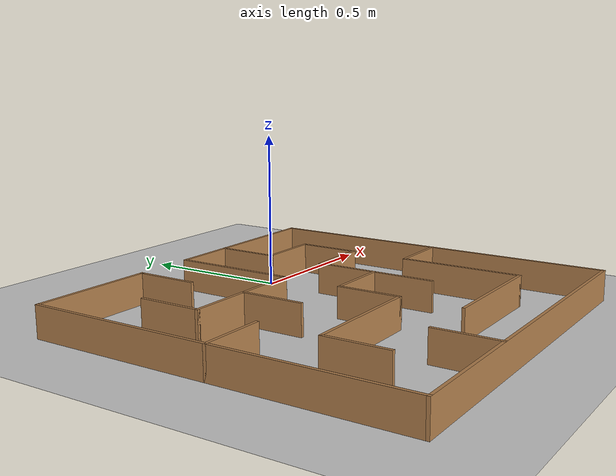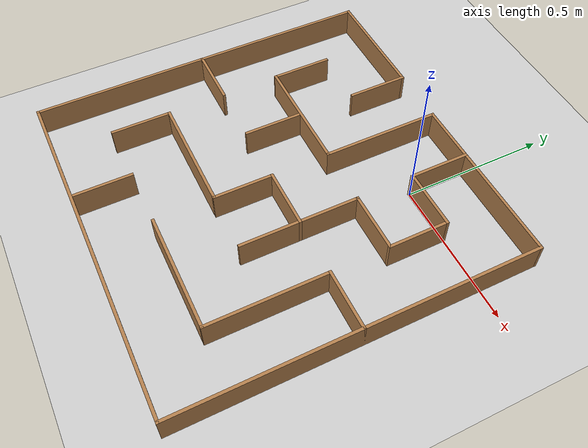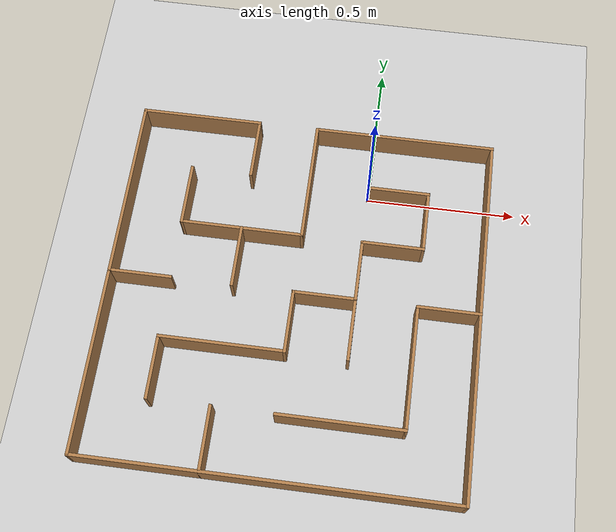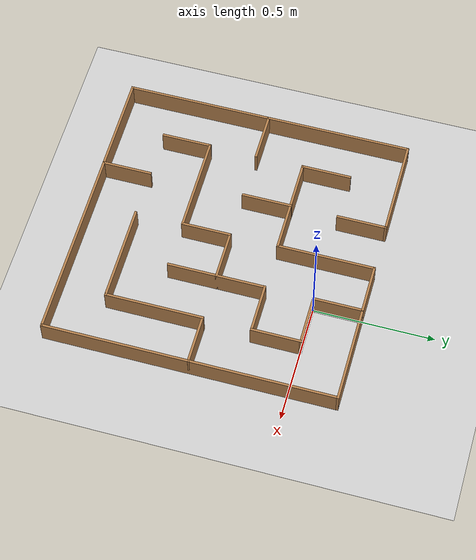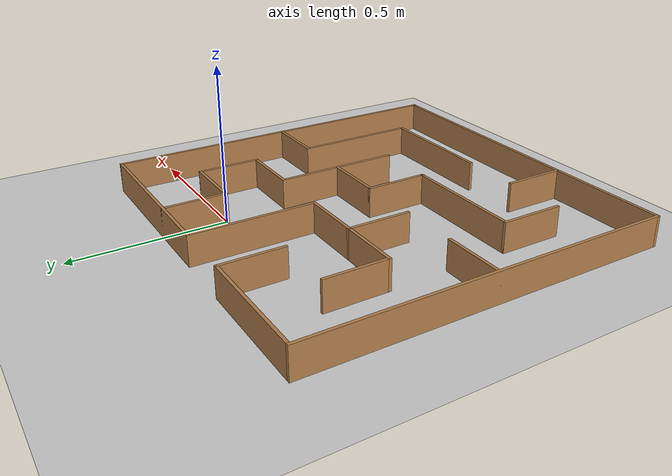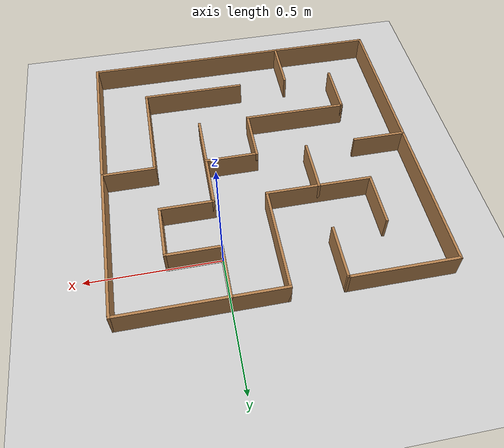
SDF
<sdf version="1.7">
 <world name="default">
  <light name="sun" type="directional">
   <pose>0 0 10 0 -0 0</pose>
   <diffuse>0.8 0.8 0.8 1</diffuse>
   <specular>0.2 0.2 0.2 1</specular>
   <attenuation>
    <range>1000</range>
    <constant>0.9</constant>
    <linear>0.01</linear>
    <quadratic>0.001</quadratic>
   </attenuation>
   <direction>-0.5 0.1 -0.9</direction>
   <spot><inner_angle>0</inner_angle><outer_angle>0</outer_angle><falloff>0</falloff></spot>
  </light>
  <model name="ground_plane">
   <static>1</static>
   <link name="link">
    <collision name="collision">
     <geometry><plane><normal>0 0 1</normal><size>100 100</size></plane></geometry>
     <surface>
      <contact><collide_bitmask>65535</collide_bitmask></contact>
      <friction><ode><mu>100</mu><mu2>50</mu2></ode></friction>
     </surface>
    </collision>
    <visual name="visual">
     <cast_shadows>0</cast_shadows>
     <geometry><plane><normal>0 0 1</normal><size>100 100</size></plane></geometry>
     <material>
      <script><uri>file://media/materials/scripts/gazebo.material</uri><name>Gazebo/Grey</name></script>
     </material>
    </visual>
   </link>
  </model>
  <gravity>0 0 -9.8</gravity>
  <magnetic_field>6e-06 2.3e-05 -4.2e-05</magnetic_field>
  <atmosphere type="adiabatic"/>
  <physics type="ode">
   <max_step_size>0.001</max_step_size>
   <real_time_factor>1</real_time_factor>
   <real_time_update_rate>1000</real_time_update_rate>
  </physics>
  <scene><ambient>0.4 0.4 0.4 1</ambient><background>0.7 0.7 0.7 1</background><shadows>1</shadows></scene>
  <audio><device>default</device></audio>
  <spherical_coordinates>
   <surface_model>EARTH_WGS84</surface_model>
   <latitude_deg>0</latitude_deg>
   <longitude_deg>0</longitude_deg>
   <elevation>0</elevation>
   <heading_deg>0</heading_deg>
  </spherical_coordinates>
  <model name="maze_6x6">
   <link name="Wall_13">
    <pose>-0.6 0 0 0 -0 1.5708</pose>
    <visual name="Wall_13_Visual">
     <pose>0 0 0.05 0 -0 0</pose>
     <geometry><box><size>1.21 0.01 0.1</size></box></geometry>
     <material>
      <script><uri>file://media/materials/scripts/gazebo.material</uri><name>Gazebo/Wood</name></script>
      <ambient>1 1 1 1</ambient>
      <shader type="pixel"/>
     </material>
     <meta><layer>0</layer></meta>
    </visual>
    <collision name="Wall_13_Collision">
     <pose>0 0 0.05 0 -0 0</pose>
     <geometry><box><size>1.21 0.01 0.1</size></box></geometry>
     <surface>
      <friction>
       <ode><mu>1</mu><mu2>1</mu2><fdir1>0 0 0</fdir1><slip1>0</slip1><slip2>0</slip2></ode>
       <torsional>
        <coefficient>1</coefficient>
        <patch_radius>0</patch_radius>
        <surface_radius>0</surface_radius>
        <use_patch_radius>1</use_patch_radius>
        <ode><slip>0</slip></ode>
       </torsional>
      </friction>
      <bounce><restitution_coefficient>0</restitution_coefficient><threshold>1e+06</threshold></bounce>
      <contact>
       <collide_without_contact>0</collide_without_contact>
       <collide_without_contact_bitmask>1</collide_without_contact_bitmask>
       <collide_bitmask>1</collide_bitmask>
       <ode>
        <soft_cfm>0</soft_cfm>
        <soft_erp>0.2</soft_erp>
        <kp>1e+13</kp>
        <kd>1</kd>
        <max_vel>0.01</max_vel>
        <min_depth>0</min_depth>
       </ode>
       <bullet>
        <split_impulse>1</split_impulse>
        <split_impulse_penetration_threshold>-0.01</split_impulse_penetration_threshold>
        <soft_cfm>0</soft_cfm>
        <soft_erp>0.2</soft_erp>
        <kp>1e+13</kp>
        <kd>1</kd>
       </bullet>
      </contact>
     </surface>
    </collision>
   </link>
   <link name="Wall_15">
    <pose>-0.3 -0.6 0 0 -0 0</pose>
    <visual name="Wall_15_Visual">
     <pose>0 0 0.05 0 -0 0</pose>
     <geometry><box><size>0.61 0.01 0.1</size></box></geometry>
     <material>
      <script><uri>file://media/materials/scripts/gazebo.material</uri><name>Gazebo/Wood</name></script>
      <ambient>1 1 1 1</ambient>
      <shader type="pixel"/>
     </material>
     <meta><layer>0</layer></meta>
    </visual>
    <collision name="Wall_15_Collision">
     <pose>0 0 0.05 0 -0 0</pose>
     <geometry><box><size>0.61 0.01 0.1</size></box></geometry>
     <surface>
      <friction>
       <ode><mu>1</mu><mu2>1</mu2><fdir1>0 0 0</fdir1><slip1>0</slip1><slip2>0</slip2></ode>
       <torsional>
        <coefficient>1</coefficient>
        <patch_radius>0</patch_radius>
        <surface_radius>0</surface_radius>
        <use_patch_radius>1</use_patch_radius>
        <ode><slip>0</slip></ode>
       </torsional>
      </friction>
      <bounce><restitution_coefficient>0</restitution_coefficient><threshold>1e+06</threshold></bounce>
      <contact>
       <collide_without_contact>0</collide_without_contact>
       <collide_without_contact_bitmask>1</collide_without_contact_bitmask>
       <collide_bitmask>1</collide_bitmask>
       <ode>
        <soft_cfm>0</soft_cfm>
        <soft_erp>0.2</soft_erp>
        <kp>1e+13</kp>
        <kd>1</kd>
        <max_vel>0.01</max_vel>
        <min_depth>0</min_depth>
       </ode>
       <bullet>
        <split_impulse>1</split_impulse>
        <split_impulse_penetration_threshold>-0.01</split_impulse_penetration_threshold>
        <soft_cfm>0</soft_cfm>
        <soft_erp>0.2</soft_erp>
        <kp>1e+13</kp>
        <kd>1</kd>
       </bullet>
      </contact>
     </surface>
    </collision>
   </link>
   <link name="Wall_17">
    <pose>0.4 -0.6 0 0 -0 0</pose>
    <visual name="Wall_17_Visual">
     <pose>0 0 0.05 0 -0 0</pose>
     <geometry><box><size>0.41 0.01 0.1</size></box></geometry>
     <material>
      <script><uri>file://media/materials/scripts/gazebo.material</uri><name>Gazebo/Wood</name></script>
      <ambient>1 1 1 1</ambient>
      <shader type="pixel"/>
     </material>
     <meta><layer>0</layer></meta>
    </visual>
    <collision name="Wall_17_Collision">
     <pose>0 0 0.05 0 -0 0</pose>
     <geometry><box><size>0.41 0.01 0.1</size></box></geometry>
     <surface>
      <friction>
       <ode><mu>1</mu><mu2>1</mu2><fdir1>0 0 0</fdir1><slip1>0</slip1><slip2>0</slip2></ode>
       <torsional>
        <coefficient>1</coefficient>
        <patch_radius>0</patch_radius>
        <surface_radius>0</surface_radius>
        <use_patch_radius>1</use_patch_radius>
        <ode><slip>0</slip></ode>
       </torsional>
      </friction>
      <bounce><restitution_coefficient>0</restitution_coefficient><threshold>1e+06</threshold></bounce>
      <contact>
       <collide_without_contact>0</collide_without_contact>
       <collide_without_contact_bitmask>1</collide_without_contact_bitmask>
       <collide_bitmask>1</collide_bitmask>
       <ode>
        <soft_cfm>0</soft_cfm>
        <soft_erp>0.2</soft_erp>
        <kp>1e+13</kp>
        <kd>1</kd>
        <max_vel>0.01</max_vel>
        <min_depth>0</min_depth>
       </ode>
       <bullet>
        <split_impulse>1</split_impulse>
        <split_impulse_penetration_threshold>-0.01</split_impulse_penetration_threshold>
        <soft_cfm>0</soft_cfm>
        <soft_erp>0.2</soft_erp>
        <kp>1e+13</kp>
        <kd>1</kd>
       </bullet>
      </contact>
     </surface>
    </collision>
   </link>
   <link name="Wall_19">
    <pose>0.6 0 0 0 -0 1.5708</pose>
    <visual name="Wall_19_Visual">
     <pose>0 0 0.05 0 -0 0</pose>
     <geometry><box><size>1.21 0.01 0.1</size></box></geometry>
     <material>
      <script><uri>file://media/materials/scripts/gazebo.material</uri><name>Gazebo/Wood</name></script>
      <ambient>1 1 1 1</ambient>
      <shader type="pixel"/>
     </material>
     <meta><layer>0</layer></meta>
    </visual>
    <collision name="Wall_19_Collision">
     <pose>0 0 0.05 0 -0 0</pose>
     <geometry><box><size>1.21 0.01 0.1</size></box></geometry>
     <surface>
      <friction>
       <ode><mu>1</mu><mu2>1</mu2><fdir1>0 0 0</fdir1><slip1>0</slip1><slip2>0</slip2></ode>
       <torsional>
        <coefficient>1</coefficient>
        <patch_radius>0</patch_radius>
        <surface_radius>0</surface_radius>
        <use_patch_radius>1</use_patch_radius>
        <ode><slip>0</slip></ode>
       </torsional>
      </friction>
      <bounce><restitution_coefficient>0</restitution_coefficient><threshold>1e+06</threshold></bounce>
      <contact>
       <collide_without_contact>0</collide_without_contact>
       <collide_without_contact_bitmask>1</collide_without_contact_bitmask>
       <collide_bitmask>1</collide_bitmask>
       <ode>
        <soft_cfm>0</soft_cfm>
        <soft_erp>0.2</soft_erp>
        <kp>1e+13</kp>
        <kd>1</kd>
        <max_vel>0.01</max_vel>
        <min_depth>0</min_depth>
       </ode>
       <bullet>
        <split_impulse>1</split_impulse>
        <split_impulse_penetration_threshold>-0.01</split_impulse_penetration_threshold>
        <soft_cfm>0</soft_cfm>
        <soft_erp>0.2</soft_erp>
        <kp>1e+13</kp>
        <kd>1</kd>
       </bullet>
      </contact>
     </surface>
    </collision>
   </link>
   <link name="Wall_21">
    <pose>-0.4 0.6 0 0 -0 0</pose>
    <inertial>
     <mass>1</mass>
     <inertia><ixx>1</ixx><ixy>0</ixy><ixz>0</ixz><iyy>1</iyy><iyz>0</iyz><izz>1</izz></inertia>
    </inertial>
    <visual name="Wall_21_Visual">
     <pose>0.4 0 0.05 0 -0 0</pose>
     <geometry><box><size>1.21 0.01 0.1</size></box></geometry>
     <material>
      <script><uri>file://media/materials/scripts/gazebo.material</uri><name>Gazebo/Wood</name></script>
      <ambient>1 1 1 1</ambient>
      <shader type="pixel"><normal_map>__default__</normal_map></shader>
      <diffuse>1 1 1 1</diffuse>
      <specular>0.2 0.2 0.2 1</specular>
      <emissive>0 0 0 1</emissive>
     </material>
     <meta><layer>0</layer></meta>
    </visual>
    <collision name="Wall_21_Collision">
     <pose>0.4 0 0.05 0 -0 0</pose>
     <geometry><box><size>1.21 0.01 0.1</size></box></geometry>
     <surface>
      <friction>
       <ode><mu>1</mu><mu2>1</mu2><fdir1>0 0 0</fdir1><slip1>0</slip1><slip2>0</slip2></ode>
       <torsional>
        <coefficient>1</coefficient>
        <patch_radius>0</patch_radius>
        <surface_radius>0</surface_radius>
        <use_patch_radius>1</use_patch_radius>
        <ode><slip>0</slip></ode>
       </torsional>
      </friction>
      <bounce><restitution_coefficient>0</restitution_coefficient><threshold>1e+06</threshold></bounce>
      <contact>
       <collide_without_contact>0</collide_without_contact>
       <collide_without_contact_bitmask>1</collide_without_contact_bitmask>
       <collide_bitmask>1</collide_bitmask>
       <ode>
        <soft_cfm>0</soft_cfm>
        <soft_erp>0.2</soft_erp>
        <kp>1e+13</kp>
        <kd>1</kd>
        <max_vel>0.01</max_vel>
        <min_depth>0</min_depth>
       </ode>
       <bullet>
        <split_impulse>1</split_impulse>
        <split_impulse_penetration_threshold>-0.01</split_impulse_penetration_threshold>
        <soft_cfm>0</soft_cfm>
        <soft_erp>0.2</soft_erp>
        <kp>1e+13</kp>
        <kd>1</kd>
       </bullet>
      </contact>
     </surface>
    </collision>
   </link>
   <link name="Wall_25">
    <pose>-0.5 0 0 0 -0 0</pose>
    <visual name="Wall_25_Visual">
     <pose>0 0 0.05 0 -0 0</pose>
     <geometry><box><size>0.21 0.01 0.1</size></box></geometry>
     <material>
      <script><uri>file://media/materials/scripts/gazebo.material</uri><name>Gazebo/Wood</name></script>
      <ambient>1 1 1 1</ambient>
      <shader type="pixel"/>
     </material>
     <meta><layer>0</layer></meta>
    </visual>
    <collision name="Wall_25_Collision">
     <pose>0 0 0.05 0 -0 0</pose>
     <geometry><box><size>0.21 0.01 0.1</size></box></geometry>
     <surface>
      <friction>
       <ode><mu>1</mu><mu2>1</mu2><fdir1>0 0 0</fdir1><slip1>0</slip1><slip2>0</slip2></ode>
       <torsional>
        <coefficient>1</coefficient>
        <patch_radius>0</patch_radius>
        <surface_radius>0</surface_radius>
        <use_patch_radius>1</use_patch_radius>
        <ode><slip>0</slip></ode>
       </torsional>
      </friction>
      <bounce><restitution_coefficient>0</restitution_coefficient><threshold>1e+06</threshold></bounce>
      <contact>
       <collide_without_contact>0</collide_without_contact>
       <collide_without_contact_bitmask>1</collide_without_contact_bitmask>
       <collide_bitmask>1</collide_bitmask>
       <ode>
        <soft_cfm>0</soft_cfm>
        <soft_erp>0.2</soft_erp>
        <kp>1e+13</kp>
        <kd>1</kd>
        <max_vel>0.01</max_vel>
        <min_depth>0</min_depth>
       </ode>
       <bullet>
        <split_impulse>1</split_impulse>
        <split_impulse_penetration_threshold>-0.01</split_impulse_penetration_threshold>
        <soft_cfm>0</soft_cfm>
        <soft_erp>0.2</soft_erp>
        <kp>1e+13</kp>
        <kd>1</kd>
       </bullet>
      </contact>
     </surface>
    </collision>
   </link>
   <link name="Wall_27">
    <pose>-0.4 0.2 0 0 -0 1.5708</pose>
    <visual name="Wall_27_Visual">
     <pose>0 0 0.05 0 -0 0</pose>
     <geometry><box><size>0.41 0.01 0.1</size></box></geometry>
     <material>
      <script><uri>file://media/materials/scripts/gazebo.material</uri><name>Gazebo/Wood</name></script>
      <ambient>1 1 1 1</ambient>
      <shader type="pixel"/>
     </material>
     <meta><layer>0</layer></meta>
    </visual>
    <collision name="Wall_27_Collision">
     <pose>0 0 0.05 0 -0 0</pose>
     <geometry><box><size>0.41 0.01 0.1</size></box></geometry>
     <surface>
      <friction>
       <ode><mu>1</mu><mu2>1</mu2><fdir1>0 0 0</fdir1><slip1>0</slip1><slip2>0</slip2></ode>
       <torsional>
        <coefficient>1</coefficient>
        <patch_radius>0</patch_radius>
        <surface_radius>0</surface_radius>
        <use_patch_radius>1</use_patch_radius>
        <ode><slip>0</slip></ode>
       </torsional>
      </friction>
      <bounce><restitution_coefficient>0</restitution_coefficient><threshold>1e+06</threshold></bounce>
      <contact>
       <collide_without_contact>0</collide_without_contact>
       <collide_without_contact_bitmask>1</collide_without_contact_bitmask>
       <collide_bitmask>1</collide_bitmask>
       <ode>
        <soft_cfm>0</soft_cfm>
        <soft_erp>0.2</soft_erp>
        <kp>1e+13</kp>
        <kd>1</kd>
        <max_vel>0.01</max_vel>
        <min_depth>0</min_depth>
       </ode>
       <bullet>
        <split_impulse>1</split_impulse>
        <split_impulse_penetration_threshold>-0.01</split_impulse_penetration_threshold>
        <soft_cfm>0</soft_cfm>
        <soft_erp>0.2</soft_erp>
        <kp>1e+13</kp>
        <kd>1</kd>
       </bullet>
      </contact>
     </surface>
    </collision>
   </link>
   <link name="Wall_29">
    <pose>-0.2 0.4 0 0 -0 0</pose>
    <visual name="Wall_29_Visual">
     <pose>0 0 0.05 0 -0 0</pose>
     <geometry><box><size>0.41 0.01 0.1</size></box></geometry>
     <material>
      <script><uri>file://media/materials/scripts/gazebo.material</uri><name>Gazebo/Wood</name></script>
      <ambient>1 1 1 1</ambient>
      <shader type="pixel"/>
     </material>
     <meta><layer>0</layer></meta>
    </visual>
    <collision name="Wall_29_Collision">
     <pose>0 0 0.05 0 -0 0</pose>
     <geometry><box><size>0.41 0.01 0.1</size></box></geometry>
     <surface>
      <friction>
       <ode><mu>1</mu><mu2>1</mu2><fdir1>0 0 0</fdir1><slip1>0</slip1><slip2>0</slip2></ode>
       <torsional>
        <coefficient>1</coefficient>
        <patch_radius>0</patch_radius>
        <surface_radius>0</surface_radius>
        <use_patch_radius>1</use_patch_radius>
        <ode><slip>0</slip></ode>
       </torsional>
      </friction>
      <bounce><restitution_coefficient>0</restitution_coefficient><threshold>1e+06</threshold></bounce>
      <contact>
       <collide_without_contact>0</collide_without_contact>
       <collide_without_contact_bitmask>1</collide_without_contact_bitmask>
       <collide_bitmask>1</collide_bitmask>
       <ode>
        <soft_cfm>0</soft_cfm>
        <soft_erp>0.2</soft_erp>
        <kp>1e+13</kp>
        <kd>1</kd>
        <max_vel>0.01</max_vel>
        <min_depth>0</min_depth>
       </ode>
       <bullet>
        <split_impulse>1</split_impulse>
        <split_impulse_penetration_threshold>-0.01</split_impulse_penetration_threshold>
        <soft_cfm>0</soft_cfm>
        <soft_erp>0.2</soft_erp>
        <kp>1e+13</kp>
        <kd>1</kd>
       </bullet>
      </contact>
     </surface>
    </collision>
   </link>
   <link name="Wall_31">
    <pose>0.2 0.5 0 0 -0 1.5708</pose>
    <visual name="Wall_31_Visual">
     <pose>0 0 0.05 0 -0 0</pose>
     <geometry><box><size>0.21 0.01 0.1</size></box></geometry>
     <material>
      <script><uri>file://media/materials/scripts/gazebo.material</uri><name>Gazebo/Wood</name></script>
      <ambient>1 1 1 1</ambient>
      <shader type="pixel"/>
     </material>
     <meta><layer>0</layer></meta>
    </visual>
    <collision name="Wall_31_Collision">
     <pose>0 0 0.05 0 -0 0</pose>
     <geometry><box><size>0.21 0.01 0.1</size></box></geometry>
     <surface>
      <friction>
       <ode><mu>1</mu><mu2>1</mu2><fdir1>0 0 0</fdir1><slip1>0</slip1><slip2>0</slip2></ode>
       <torsional>
        <coefficient>1</coefficient>
        <patch_radius>0</patch_radius>
        <surface_radius>0</surface_radius>
        <use_patch_radius>1</use_patch_radius>
        <ode><slip>0</slip></ode>
       </torsional>
      </friction>
      <bounce><restitution_coefficient>0</restitution_coefficient><threshold>1e+06</threshold></bounce>
      <contact>
       <collide_without_contact>0</collide_without_contact>
       <collide_without_contact_bitmask>1</collide_without_contact_bitmask>
       <collide_bitmask>1</collide_bitmask>
       <ode>
        <soft_cfm>0</soft_cfm>
        <soft_erp>0.2</soft_erp>
        <kp>1e+13</kp>
        <kd>1</kd>
        <max_vel>0.01</max_vel>
        <min_depth>0</min_depth>
       </ode>
       <bullet>
        <split_impulse>1</split_impulse>
        <split_impulse_penetration_threshold>-0.01</split_impulse_penetration_threshold>
        <soft_cfm>0</soft_cfm>
        <soft_erp>0.2</soft_erp>
        <kp>1e+13</kp>
        <kd>1</kd>
       </bullet>
      </contact>
     </surface>
    </collision>
   </link>
   <link name="Wall_33">
    <pose>-0.2 -0.5 0 0 -0 1.5708</pose>
    <visual name="Wall_33_Visual">
     <pose>0 0 0.05 0 -0 0</pose>
     <geometry><box><size>0.21 0.01 0.1</size></box></geometry>
     <material>
      <script><uri>file://media/materials/scripts/gazebo.material</uri><name>Gazebo/Wood</name></script>
      <ambient>1 1 1 1</ambient>
      <shader type="pixel"/>
     </material>
     <meta><layer>0</layer></meta>
    </visual>
    <collision name="Wall_33_Collision">
     <pose>0 0 0.05 0 -0 0</pose>
     <geometry><box><size>0.21 0.01 0.1</size></box></geometry>
     <surface>
      <friction>
       <ode><mu>1</mu><mu2>1</mu2><fdir1>0 0 0</fdir1><slip1>0</slip1><slip2>0</slip2></ode>
       <torsional>
        <coefficient>1</coefficient>
        <patch_radius>0</patch_radius>
        <surface_radius>0</surface_radius>
        <use_patch_radius>1</use_patch_radius>
        <ode><slip>0</slip></ode>
       </torsional>
      </friction>
      <bounce><restitution_coefficient>0</restitution_coefficient><threshold>1e+06</threshold></bounce>
      <contact>
       <collide_without_contact>0</collide_without_contact>
       <collide_without_contact_bitmask>1</collide_without_contact_bitmask>
       <collide_bitmask>1</collide_bitmask>
       <ode>
        <soft_cfm>0</soft_cfm>
        <soft_erp>0.2</soft_erp>
        <kp>1e+13</kp>
        <kd>1</kd>
        <max_vel>0.01</max_vel>
        <min_depth>0</min_depth>
       </ode>
       <bullet>
        <split_impulse>1</split_impulse>
        <split_impulse_penetration_threshold>-0.01</split_impulse_penetration_threshold>
        <soft_cfm>0</soft_cfm>
        <soft_erp>0.2</soft_erp>
        <kp>1e+13</kp>
        <kd>1</kd>
       </bullet>
      </contact>
     </surface>
    </collision>
   </link>
   <link name="Wall_35">
    <pose>-0.3 -0.4 0 0 -0 0</pose>
    <visual name="Wall_35_Visual">
     <pose>0 0 0.05 0 -0 0</pose>
     <geometry><box><size>0.21 0.01 0.1</size></box></geometry>
     <material>
      <script><uri>file://media/materials/scripts/gazebo.material</uri><name>Gazebo/Wood</name></script>
      <ambient>1 1 1 1</ambient>
      <shader type="pixel"/>
     </material>
     <meta><layer>0</layer></meta>
    </visual>
    <collision name="Wall_35_Collision">
     <pose>0 0 0.05 0 -0 0</pose>
     <geometry><box><size>0.21 0.01 0.1</size></box></geometry>
     <surface>
      <friction>
       <ode><mu>1</mu><mu2>1</mu2><fdir1>0 0 0</fdir1><slip1>0</slip1><slip2>0</slip2></ode>
       <torsional>
        <coefficient>1</coefficient>
        <patch_radius>0</patch_radius>
        <surface_radius>0</surface_radius>
        <use_patch_radius>1</use_patch_radius>
        <ode><slip>0</slip></ode>
       </torsional>
      </friction>
      <bounce><restitution_coefficient>0</restitution_coefficient><threshold>1e+06</threshold></bounce>
      <contact>
       <collide_without_contact>0</collide_without_contact>
       <collide_without_contact_bitmask>1</collide_without_contact_bitmask>
       <collide_bitmask>1</collide_bitmask>
       <ode>
        <soft_cfm>0</soft_cfm>
        <soft_erp>0.2</soft_erp>
        <kp>1e+13</kp>
        <kd>1</kd>
        <max_vel>0.01</max_vel>
        <min_depth>0</min_depth>
       </ode>
       <bullet>
        <split_impulse>1</split_impulse>
        <split_impulse_penetration_threshold>-0.01</split_impulse_penetration_threshold>
        <soft_cfm>0</soft_cfm>
        <soft_erp>0.2</soft_erp>
        <kp>1e+13</kp>
        <kd>1</kd>
       </bullet>
      </contact>
     </surface>
    </collision>
   </link>
   <link name="Wall_37">
    <pose>-0.4 -0.3 0 0 -0 1.5708</pose>
    <visual name="Wall_37_Visual">
     <pose>0 0 0.05 0 -0 0</pose>
     <geometry><box><size>0.21 0.01 0.1</size></box></geometry>
     <material>
      <script><uri>file://media/materials/scripts/gazebo.material</uri><name>Gazebo/Wood</name></script>
      <ambient>1 1 1 1</ambient>
      <shader type="pixel"/>
     </material>
     <meta><layer>0</layer></meta>
    </visual>
    <collision name="Wall_37_Collision">
     <pose>0 0 0.05 0 -0 0</pose>
     <geometry><box><size>0.21 0.01 0.1</size></box></geometry>
     <surface>
      <friction>
       <ode><mu>1</mu><mu2>1</mu2><fdir1>0 0 0</fdir1><slip1>0</slip1><slip2>0</slip2></ode>
       <torsional>
        <coefficient>1</coefficient>
        <patch_radius>0</patch_radius>
        <surface_radius>0</surface_radius>
        <use_patch_radius>1</use_patch_radius>
        <ode><slip>0</slip></ode>
       </torsional>
      </friction>
      <bounce><restitution_coefficient>0</restitution_coefficient><threshold>1e+06</threshold></bounce>
      <contact>
       <collide_without_contact>0</collide_without_contact>
       <collide_without_contact_bitmask>1</collide_without_contact_bitmask>
       <collide_bitmask>1</collide_bitmask>
       <ode>
        <soft_cfm>0</soft_cfm>
        <soft_erp>0.2</soft_erp>
        <kp>1e+13</kp>
        <kd>1</kd>
        <max_vel>0.01</max_vel>
        <min_depth>0</min_depth>
       </ode>
       <bullet>
        <split_impulse>1</split_impulse>
        <split_impulse_penetration_threshold>-0.01</split_impulse_penetration_threshold>
        <soft_cfm>0</soft_cfm>
        <soft_erp>0.2</soft_erp>
        <kp>1e+13</kp>
        <kd>1</kd>
       </bullet>
      </contact>
     </surface>
    </collision>
   </link>
   <link name="Wall_39">
    <pose>-0.3 -0.2 0 0 -0 0</pose>
    <visual name="Wall_39_Visual">
     <pose>0 0 0.05 0 -0 0</pose>
     <geometry><box><size>0.21 0.01 0.1</size></box></geometry>
     <material>
      <script><uri>file://media/materials/scripts/gazebo.material</uri><name>Gazebo/Wood</name></script>
      <ambient>1 1 1 1</ambient>
      <shader type="pixel"/>
     </material>
     <meta><layer>0</layer></meta>
    </visual>
    <collision name="Wall_39_Collision">
     <pose>0 0 0.05 0 -0 0</pose>
     <geometry><box><size>0.21 0.01 0.1</size></box></geometry>
     <surface>
      <friction>
       <ode><mu>1</mu><mu2>1</mu2><fdir1>0 0 0</fdir1><slip1>0</slip1><slip2>0</slip2></ode>
       <torsional>
        <coefficient>1</coefficient>
        <patch_radius>0</patch_radius>
        <surface_radius>0</surface_radius>
        <use_patch_radius>1</use_patch_radius>
        <ode><slip>0</slip></ode>
       </torsional>
      </friction>
      <bounce><restitution_coefficient>0</restitution_coefficient><threshold>1e+06</threshold></bounce>
      <contact>
       <collide_without_contact>0</collide_without_contact>
       <collide_without_contact_bitmask>1</collide_without_contact_bitmask>
       <collide_bitmask>1</collide_bitmask>
       <ode>
        <soft_cfm>0</soft_cfm>
        <soft_erp>0.2</soft_erp>
        <kp>1e+13</kp>
        <kd>1</kd>
        <max_vel>0.01</max_vel>
        <min_depth>0</min_depth>
       </ode>
       <bullet>
        <split_impulse>1</split_impulse>
        <split_impulse_penetration_threshold>-0.01</split_impulse_penetration_threshold>
        <soft_cfm>0</soft_cfm>
        <soft_erp>0.2</soft_erp>
        <kp>1e+13</kp>
        <kd>1</kd>
       </bullet>
      </contact>
     </surface>
    </collision>
   </link>
   <link name="Wall_41">
    <pose>-0.2 0 0 0 -0 1.5708</pose>
    <visual name="Wall_41_Visual">
     <pose>0 0 0.05 0 -0 0</pose>
     <geometry><box><size>0.41 0.01 0.1</size></box></geometry>
     <material>
      <script><uri>file://media/materials/scripts/gazebo.material</uri><name>Gazebo/Wood</name></script>
      <ambient>1 1 1 1</ambient>
      <shader type="pixel"/>
     </material>
     <meta><layer>0</layer></meta>
    </visual>
    <collision name="Wall_41_Collision">
     <pose>0 0 0.05 0 -0 0</pose>
     <geometry><box><size>0.41 0.01 0.1</size></box></geometry>
     <surface>
      <friction>
       <ode><mu>1</mu><mu2>1</mu2><fdir1>0 0 0</fdir1><slip1>0</slip1><slip2>0</slip2></ode>
       <torsional>
        <coefficient>1</coefficient>
        <patch_radius>0</patch_radius>
        <surface_radius>0</surface_radius>
        <use_patch_radius>1</use_patch_radius>
        <ode><slip>0</slip></ode>
       </torsional>
      </friction>
      <bounce><restitution_coefficient>0</restitution_coefficient><threshold>1e+06</threshold></bounce>
      <contact>
       <collide_without_contact>0</collide_without_contact>
       <collide_without_contact_bitmask>1</collide_without_contact_bitmask>
       <collide_bitmask>1</collide_bitmask>
       <ode>
        <soft_cfm>0</soft_cfm>
        <soft_erp>0.2</soft_erp>
        <kp>1e+13</kp>
        <kd>1</kd>
        <max_vel>0.01</max_vel>
        <min_depth>0</min_depth>
       </ode>
       <bullet>
        <split_impulse>1</split_impulse>
        <split_impulse_penetration_threshold>-0.01</split_impulse_penetration_threshold>
        <soft_cfm>0</soft_cfm>
        <soft_erp>0.2</soft_erp>
        <kp>1e+13</kp>
        <kd>1</kd>
       </bullet>
      </contact>
     </surface>
    </collision>
   </link>
   <link name="Wall_43">
    <pose>-0.1 0 0 0 -0 0</pose>
    <visual name="Wall_43_Visual">
     <pose>0 0 0.05 0 -0 0</pose>
     <geometry><box><size>0.21 0.01 0.1</size></box></geometry>
     <material>
      <script><uri>file://media/materials/scripts/gazebo.material</uri><name>Gazebo/Wood</name></script>
      <ambient>1 1 1 1</ambient>
      <shader type="pixel"/>
     </material>
     <meta><layer>0</layer></meta>
    </visual>
    <collision name="Wall_43_Collision">
     <pose>0 0 0.05 0 -0 0</pose>
     <geometry><box><size>0.21 0.01 0.1</size></box></geometry>
     <surface>
      <friction>
       <ode><mu>1</mu><mu2>1</mu2><fdir1>0 0 0</fdir1><slip1>0</slip1><slip2>0</slip2></ode>
       <torsional>
        <coefficient>1</coefficient>
        <patch_radius>0</patch_radius>
        <surface_radius>0</surface_radius>
        <use_patch_radius>1</use_patch_radius>
        <ode><slip>0</slip></ode>
       </torsional>
      </friction>
      <bounce><restitution_coefficient>0</restitution_coefficient><threshold>1e+06</threshold></bounce>
      <contact>
       <collide_without_contact>0</collide_without_contact>
       <collide_without_contact_bitmask>1</collide_without_contact_bitmask>
       <collide_bitmask>1</collide_bitmask>
       <ode>
        <soft_cfm>0</soft_cfm>
        <soft_erp>0.2</soft_erp>
        <kp>1e+13</kp>
        <kd>1</kd>
        <max_vel>0.01</max_vel>
        <min_depth>0</min_depth>
       </ode>
       <bullet>
        <split_impulse>1</split_impulse>
        <split_impulse_penetration_threshold>-0.01</split_impulse_penetration_threshold>
        <soft_cfm>0</soft_cfm>
        <soft_erp>0.2</soft_erp>
        <kp>1e+13</kp>
        <kd>1</kd>
       </bullet>
      </contact>
     </surface>
    </collision>
   </link>
   <link name="Wall_45">
    <pose>0 0.1 0 0 -0 1.5708</pose>
    <visual name="Wall_45_Visual">
     <pose>0 0 0.05 0 -0 0</pose>
     <geometry><box><size>0.21 0.01 0.1</size></box></geometry>
     <material>
      <script><uri>file://media/materials/scripts/gazebo.material</uri><name>Gazebo/Wood</name></script>
      <ambient>1 1 1 1</ambient>
      <shader type="pixel"/>
     </material>
     <meta><layer>0</layer></meta>
    </visual>
    <collision name="Wall_45_Collision">
     <pose>0 0 0.05 0 -0 0</pose>
     <geometry><box><size>0.21 0.01 0.1</size></box></geometry>
     <surface>
      <friction>
       <ode><mu>1</mu><mu2>1</mu2><fdir1>0 0 0</fdir1><slip1>0</slip1><slip2>0</slip2></ode>
       <torsional>
        <coefficient>1</coefficient>
        <patch_radius>0</patch_radius>
        <surface_radius>0</surface_radius>
        <use_patch_radius>1</use_patch_radius>
        <ode><slip>0</slip></ode>
       </torsional>
      </friction>
      <bounce><restitution_coefficient>0</restitution_coefficient><threshold>1e+06</threshold></bounce>
      <contact>
       <collide_without_contact>0</collide_without_contact>
       <collide_without_contact_bitmask>1</collide_without_contact_bitmask>
       <collide_bitmask>1</collide_bitmask>
       <ode>
        <soft_cfm>0</soft_cfm>
        <soft_erp>0.2</soft_erp>
        <kp>1e+13</kp>
        <kd>1</kd>
        <max_vel>0.01</max_vel>
        <min_depth>0</min_depth>
       </ode>
       <bullet>
        <split_impulse>1</split_impulse>
        <split_impulse_penetration_threshold>-0.01</split_impulse_penetration_threshold>
        <soft_cfm>0</soft_cfm>
        <soft_erp>0.2</soft_erp>
        <kp>1e+13</kp>
        <kd>1</kd>
       </bullet>
      </contact>
     </surface>
    </collision>
   </link>
   <link name="Wall_47">
    <pose>0.2 0.2 0 0 -0 0</pose>
    <visual name="Wall_47_Visual">
     <pose>0 0 0.05 0 -0 0</pose>
     <geometry><box><size>0.41 0.01 0.1</size></box></geometry>
     <material>
      <script><uri>file://media/materials/scripts/gazebo.material</uri><name>Gazebo/Wood</name></script>
      <ambient>1 1 1 1</ambient>
      <shader type="pixel"/>
     </material>
     <meta><layer>0</layer></meta>
    </visual>
    <collision name="Wall_47_Collision">
     <pose>0 0 0.05 0 -0 0</pose>
     <geometry><box><size>0.41 0.01 0.1</size></box></geometry>
     <surface>
      <friction>
       <ode><mu>1</mu><mu2>1</mu2><fdir1>0 0 0</fdir1><slip1>0</slip1><slip2>0</slip2></ode>
       <torsional>
        <coefficient>1</coefficient>
        <patch_radius>0</patch_radius>
        <surface_radius>0</surface_radius>
        <use_patch_radius>1</use_patch_radius>
        <ode><slip>0</slip></ode>
       </torsional>
      </friction>
      <bounce><restitution_coefficient>0</restitution_coefficient><threshold>1e+06</threshold></bounce>
      <contact>
       <collide_without_contact>0</collide_without_contact>
       <collide_without_contact_bitmask>1</collide_without_contact_bitmask>
       <collide_bitmask>1</collide_bitmask>
       <ode>
        <soft_cfm>0</soft_cfm>
        <soft_erp>0.2</soft_erp>
        <kp>1e+13</kp>
        <kd>1</kd>
        <max_vel>0.01</max_vel>
        <min_depth>0</min_depth>
       </ode>
       <bullet>
        <split_impulse>1</split_impulse>
        <split_impulse_penetration_threshold>-0.01</split_impulse_penetration_threshold>
        <soft_cfm>0</soft_cfm>
        <soft_erp>0.2</soft_erp>
        <kp>1e+13</kp>
        <kd>1</kd>
       </bullet>
      </contact>
     </surface>
    </collision>
   </link>
   <link name="Wall_49">
    <pose>0.4 0.3 0 0 -0 1.5708</pose>
    <visual name="Wall_49_Visual">
     <pose>0 0 0.05 0 -0 0</pose>
     <geometry><box><size>0.21 0.01 0.1</size></box></geometry>
     <material>
      <script><uri>file://media/materials/scripts/gazebo.material</uri><name>Gazebo/Wood</name></script>
      <ambient>1 1 1 1</ambient>
      <shader type="pixel"/>
     </material>
     <meta><layer>0</layer></meta>
    </visual>
    <collision name="Wall_49_Collision">
     <pose>0 0 0.05 0 -0 0</pose>
     <geometry><box><size>0.21 0.01 0.1</size></box></geometry>
     <surface>
      <friction>
       <ode><mu>1</mu><mu2>1</mu2><fdir1>0 0 0</fdir1><slip1>0</slip1><slip2>0</slip2></ode>
       <torsional>
        <coefficient>1</coefficient>
        <patch_radius>0</patch_radius>
        <surface_radius>0</surface_radius>
        <use_patch_radius>1</use_patch_radius>
        <ode><slip>0</slip></ode>
       </torsional>
      </friction>
      <bounce><restitution_coefficient>0</restitution_coefficient><threshold>1e+06</threshold></bounce>
      <contact>
       <collide_without_contact>0</collide_without_contact>
       <collide_without_contact_bitmask>1</collide_without_contact_bitmask>
       <collide_bitmask>1</collide_bitmask>
       <ode>
        <soft_cfm>0</soft_cfm>
        <soft_erp>0.2</soft_erp>
        <kp>1e+13</kp>
        <kd>1</kd>
        <max_vel>0.01</max_vel>
        <min_depth>0</min_depth>
       </ode>
       <bullet>
        <split_impulse>1</split_impulse>
        <split_impulse_penetration_threshold>-0.01</split_impulse_penetration_threshold>
        <soft_cfm>0</soft_cfm>
        <soft_erp>0.2</soft_erp>
        <kp>1e+13</kp>
        <kd>1</kd>
       </bullet>
      </contact>
     </surface>
    </collision>
   </link>
   <link name="Wall_51">
    <pose>0.5 0 0 0 -0 0</pose>
    <visual name="Wall_51_Visual">
     <pose>0 0 0.05 0 -0 0</pose>
     <geometry><box><size>0.21 0.01 0.1</size></box></geometry>
     <material>
      <script><uri>file://media/materials/scripts/gazebo.material</uri><name>Gazebo/Wood</name></script>
      <ambient>1 1 1 1</ambient>
      <shader type="pixel"/>
     </material>
     <meta><layer>0</layer></meta>
    </visual>
    <collision name="Wall_51_Collision">
     <pose>0 0 0.05 0 -0 0</pose>
     <geometry><box><size>0.21 0.01 0.1</size></box></geometry>
     <surface>
      <friction>
       <ode><mu>1</mu><mu2>1</mu2><fdir1>0 0 0</fdir1><slip1>0</slip1><slip2>0</slip2></ode>
       <torsional>
        <coefficient>1</coefficient>
        <patch_radius>0</patch_radius>
        <surface_radius>0</surface_radius>
        <use_patch_radius>1</use_patch_radius>
        <ode><slip>0</slip></ode>
       </torsional>
      </friction>
      <bounce><restitution_coefficient>0</restitution_coefficient><threshold>1e+06</threshold></bounce>
      <contact>
       <collide_without_contact>0</collide_without_contact>
       <collide_without_contact_bitmask>1</collide_without_contact_bitmask>
       <collide_bitmask>1</collide_bitmask>
       <ode>
        <soft_cfm>0</soft_cfm>
        <soft_erp>0.2</soft_erp>
        <kp>1e+13</kp>
        <kd>1</kd>
        <max_vel>0.01</max_vel>
        <min_depth>0</min_depth>
       </ode>
       <bullet>
        <split_impulse>1</split_impulse>
        <split_impulse_penetration_threshold>-0.01</split_impulse_penetration_threshold>
        <soft_cfm>0</soft_cfm>
        <soft_erp>0.2</soft_erp>
        <kp>1e+13</kp>
        <kd>1</kd>
       </bullet>
      </contact>
     </surface>
    </collision>
   </link>
   <link name="Wall_53">
    <pose>0 -0.4 0 0 -0 1.5708</pose>
    <visual name="Wall_53_Visual">
     <pose>0 0 0.05 0 -0 0</pose>
     <geometry><box><size>0.41 0.01 0.1</size></box></geometry>
     <material>
      <script><uri>file://media/materials/scripts/gazebo.material</uri><name>Gazebo/Wood</name></script>
      <ambient>1 1 1 1</ambient>
      <shader type="pixel"/>
     </material>
     <meta><layer>0</layer></meta>
    </visual>
    <collision name="Wall_53_Collision">
     <pose>0 0 0.05 0 -0 0</pose>
     <geometry><box><size>0.41 0.01 0.1</size></box></geometry>
     <surface>
      <friction>
       <ode><mu>1</mu><mu2>1</mu2><fdir1>0 0 0</fdir1><slip1>0</slip1><slip2>0</slip2></ode>
       <torsional>
        <coefficient>1</coefficient>
        <patch_radius>0</patch_radius>
        <surface_radius>0</surface_radius>
        <use_patch_radius>1</use_patch_radius>
        <ode><slip>0</slip></ode>
       </torsional>
      </friction>
      <bounce><restitution_coefficient>0</restitution_coefficient><threshold>1e+06</threshold></bounce>
      <contact>
       <collide_without_contact>0</collide_without_contact>
       <collide_without_contact_bitmask>1</collide_without_contact_bitmask>
       <collide_bitmask>1</collide_bitmask>
       <ode>
        <soft_cfm>0</soft_cfm>
        <soft_erp>0.2</soft_erp>
        <kp>1e+13</kp>
        <kd>1</kd>
        <max_vel>0.01</max_vel>
        <min_depth>0</min_depth>
       </ode>
       <bullet>
        <split_impulse>1</split_impulse>
        <split_impulse_penetration_threshold>-0.01</split_impulse_penetration_threshold>
        <soft_cfm>0</soft_cfm>
        <soft_erp>0.2</soft_erp>
        <kp>1e+13</kp>
        <kd>1</kd>
       </bullet>
      </contact>
     </surface>
    </collision>
   </link>
   <link name="Wall_55">
    <pose>0.2 -0.2 0 0 -0 0</pose>
    <visual name="Wall_55_Visual">
     <pose>0 0 0.05 0 -0 0</pose>
     <geometry><box><size>0.41 0.01 0.1</size></box></geometry>
     <material>
      <script><uri>file://media/materials/scripts/gazebo.material</uri><name>Gazebo/Wood</name></script>
      <ambient>1 1 1 1</ambient>
      <shader type="pixel"/>
     </material>
     <meta><layer>0</layer></meta>
    </visual>
    <collision name="Wall_55_Collision">
     <pose>0 0 0.05 0 -0 0</pose>
     <geometry><box><size>0.41 0.01 0.1</size></box></geometry>
     <surface>
      <friction>
       <ode><mu>1</mu><mu2>1</mu2><fdir1>0 0 0</fdir1><slip1>0</slip1><slip2>0</slip2></ode>
       <torsional>
        <coefficient>1</coefficient>
        <patch_radius>0</patch_radius>
        <surface_radius>0</surface_radius>
        <use_patch_radius>1</use_patch_radius>
        <ode><slip>0</slip></ode>
       </torsional>
      </friction>
      <bounce><restitution_coefficient>0</restitution_coefficient><threshold>1e+06</threshold></bounce>
      <contact>
       <collide_without_contact>0</collide_without_contact>
       <collide_without_contact_bitmask>1</collide_without_contact_bitmask>
       <collide_bitmask>1</collide_bitmask>
       <ode>
        <soft_cfm>0</soft_cfm>
        <soft_erp>0.2</soft_erp>
        <kp>1e+13</kp>
        <kd>1</kd>
        <max_vel>0.01</max_vel>
        <min_depth>0</min_depth>
       </ode>
       <bullet>
        <split_impulse>1</split_impulse>
        <split_impulse_penetration_threshold>-0.01</split_impulse_penetration_threshold>
        <soft_cfm>0</soft_cfm>
        <soft_erp>0.2</soft_erp>
        <kp>1e+13</kp>
        <kd>1</kd>
       </bullet>
      </contact>
     </surface>
    </collision>
   </link>
   <link name="Wall_57">
    <pose>0.2 -0.1 0 0 -0 1.5708</pose>
    <visual name="Wall_57_Visual">
     <pose>0 0 0.05 0 -0 0</pose>
     <geometry><box><size>0.21 0.01 0.1</size></box></geometry>
     <material>
      <script><uri>file://media/materials/scripts/gazebo.material</uri><name>Gazebo/Wood</name></script>
      <ambient>1 1 1 1</ambient>
      <shader type="pixel"/>
     </material>
     <meta><layer>0</layer></meta>
    </visual>
    <collision name="Wall_57_Collision">
     <pose>0 0 0.05 0 -0 0</pose>
     <geometry><box><size>0.21 0.01 0.1</size></box></geometry>
     <surface>
      <friction>
       <ode><mu>1</mu><mu2>1</mu2><fdir1>0 0 0</fdir1><slip1>0</slip1><slip2>0</slip2></ode>
       <torsional>
        <coefficient>1</coefficient>
        <patch_radius>0</patch_radius>
        <surface_radius>0</surface_radius>
        <use_patch_radius>1</use_patch_radius>
        <ode><slip>0</slip></ode>
       </torsional>
      </friction>
      <bounce><restitution_coefficient>0</restitution_coefficient><threshold>1e+06</threshold></bounce>
      <contact>
       <collide_without_contact>0</collide_without_contact>
       <collide_without_contact_bitmask>1</collide_without_contact_bitmask>
       <collide_bitmask>1</collide_bitmask>
       <ode>
        <soft_cfm>0</soft_cfm>
        <soft_erp>0.2</soft_erp>
        <kp>1e+13</kp>
        <kd>1</kd>
        <max_vel>0.01</max_vel>
        <min_depth>0</min_depth>
       </ode>
       <bullet>
        <split_impulse>1</split_impulse>
        <split_impulse_penetration_threshold>-0.01</split_impulse_penetration_threshold>
        <soft_cfm>0</soft_cfm>
        <soft_erp>0.2</soft_erp>
        <kp>1e+13</kp>
        <kd>1</kd>
       </bullet>
      </contact>
     </surface>
    </collision>
   </link>
   <link name="Wall_59">
    <pose>0.4 -0.3 0 0 -0 1.5708</pose>
    <visual name="Wall_59_Visual">
     <pose>0 0 0.05 0 -0 0</pose>
     <geometry><box><size>0.21 0.01 0.1</size></box></geometry>
     <material>
      <script><uri>file://media/materials/scripts/gazebo.material</uri><name>Gazebo/Wood</name></script>
      <ambient>1 1 1 1</ambient>
      <shader type="pixel"/>
     </material>
     <meta><layer>0</layer></meta>
    </visual>
    <collision name="Wall_59_Collision">
     <pose>0 0 0.05 0 -0 0</pose>
     <geometry><box><size>0.21 0.01 0.1</size></box></geometry>
     <surface>
      <friction>
       <ode><mu>1</mu><mu2>1</mu2><fdir1>0 0 0</fdir1><slip1>0</slip1><slip2>0</slip2></ode>
       <torsional>
        <coefficient>1</coefficient>
        <patch_radius>0</patch_radius>
        <surface_radius>0</surface_radius>
        <use_patch_radius>1</use_patch_radius>
        <ode><slip>0</slip></ode>
       </torsional>
      </friction>
      <bounce><restitution_coefficient>0</restitution_coefficient><threshold>1e+06</threshold></bounce>
      <contact>
       <collide_without_contact>0</collide_without_contact>
       <collide_without_contact_bitmask>1</collide_without_contact_bitmask>
       <collide_bitmask>1</collide_bitmask>
       <ode>
        <soft_cfm>0</soft_cfm>
        <soft_erp>0.2</soft_erp>
        <kp>1e+13</kp>
        <kd>1</kd>
        <max_vel>0.01</max_vel>
        <min_depth>0</min_depth>
       </ode>
       <bullet>
        <split_impulse>1</split_impulse>
        <split_impulse_penetration_threshold>-0.01</split_impulse_penetration_threshold>
        <soft_cfm>0</soft_cfm>
        <soft_erp>0.2</soft_erp>
        <kp>1e+13</kp>
        <kd>1</kd>
       </bullet>
      </contact>
     </surface>
    </collision>
   </link>
   <link name="Wall_61">
    <pose>0.2 -0.5 0 0 -0 1.5708</pose>
    <visual name="Wall_61_Visual">
     <pose>0 0 0.05 0 -0 0</pose>
     <geometry><box><size>0.21 0.01 0.1</size></box></geometry>
     <material>
      <script><uri>file://media/materials/scripts/gazebo.material</uri><name>Gazebo/Wood</name></script>
      <ambient>1 1 1 1</ambient>
      <shader type="pixel"/>
     </material>
     <meta><layer>0</layer></meta>
    </visual>
    <collision name="Wall_61_Collision">
     <pose>0 0 0.05 0 -0 0</pose>
     <geometry><box><size>0.21 0.01 0.1</size></box></geometry>
     <surface>
      <friction>
       <ode><mu>1</mu><mu2>1</mu2><fdir1>0 0 0</fdir1><slip1>0</slip1><slip2>0</slip2></ode>
       <torsional>
        <coefficient>1</coefficient>
        <patch_radius>0</patch_radius>
        <surface_radius>0</surface_radius>
        <use_patch_radius>1</use_patch_radius>
        <ode><slip>0</slip></ode>
       </torsional>
      </friction>
      <bounce><restitution_coefficient>0</restitution_coefficient><threshold>1e+06</threshold></bounce>
      <contact>
       <collide_without_contact>0</collide_without_contact>
       <collide_without_contact_bitmask>1</collide_without_contact_bitmask>
       <collide_bitmask>1</collide_bitmask>
       <ode>
        <soft_cfm>0</soft_cfm>
        <soft_erp>0.2</soft_erp>
        <kp>1e+13</kp>
        <kd>1</kd>
        <max_vel>0.01</max_vel>
        <min_depth>0</min_depth>
       </ode>
       <bullet>
        <split_impulse>1</split_impulse>
        <split_impulse_penetration_threshold>-0.01</split_impulse_penetration_threshold>
        <soft_cfm>0</soft_cfm>
        <soft_erp>0.2</soft_erp>
        <kp>1e+13</kp>
        <kd>1</kd>
       </bullet>
      </contact>
     </surface>
    </collision>
   </link>
   <static>1</static>
   <pose>-0.2 -0.4 0 0 -0 -3.14159</pose>
  </model>
 </world>
</sdf>
